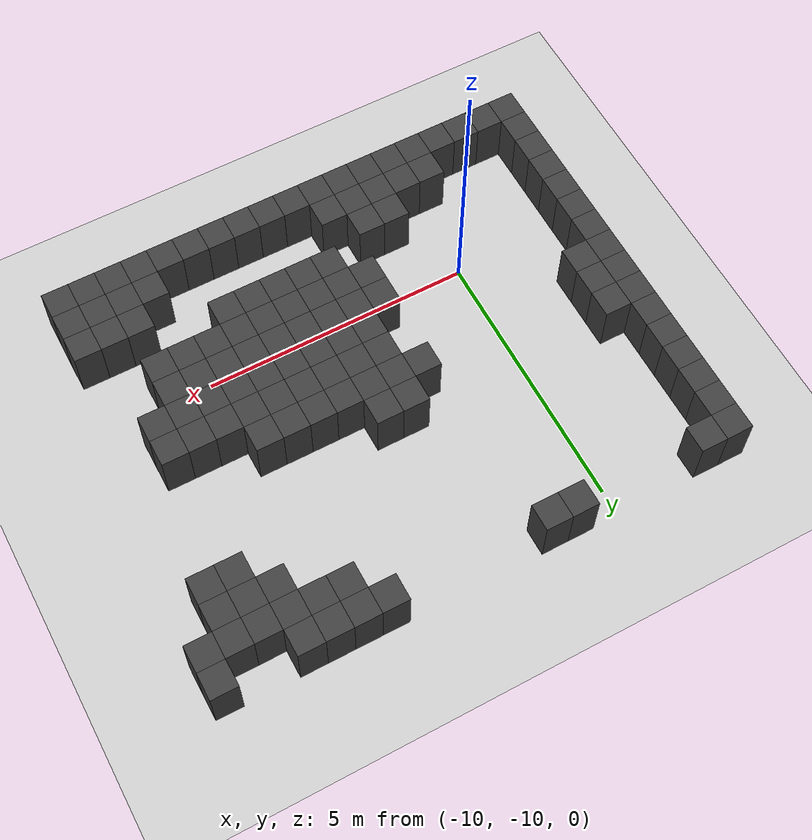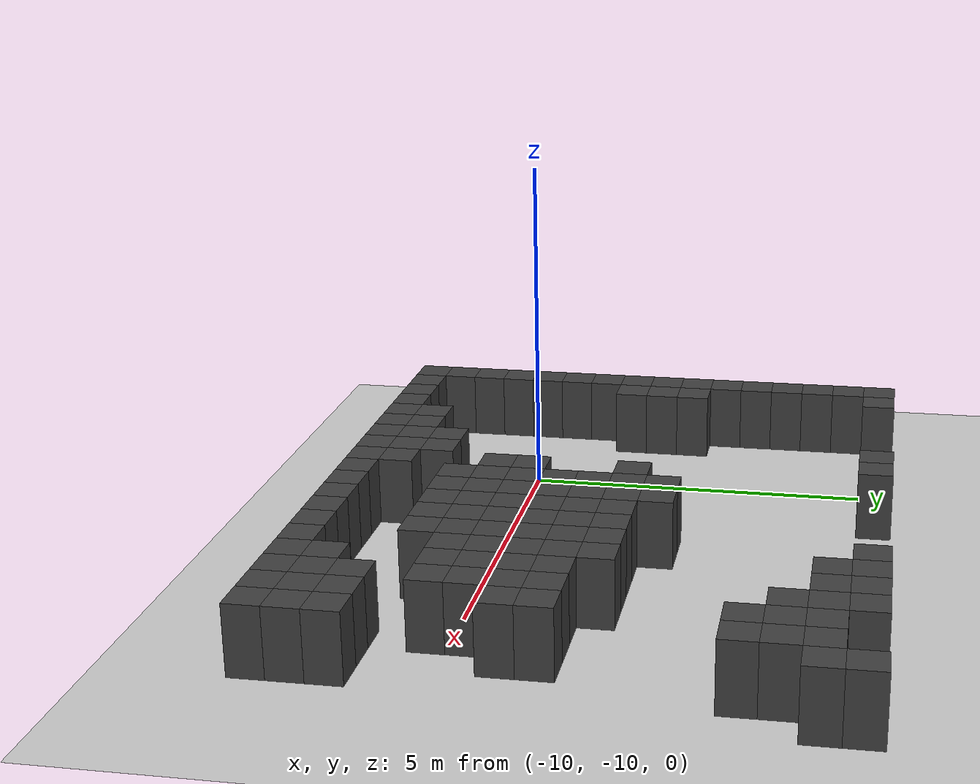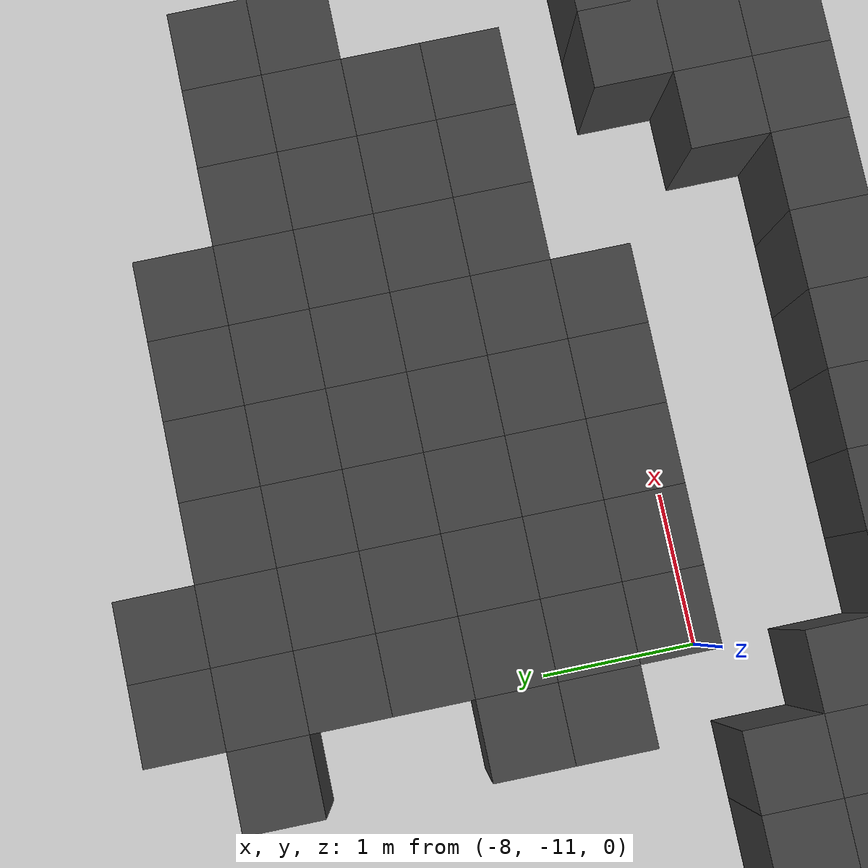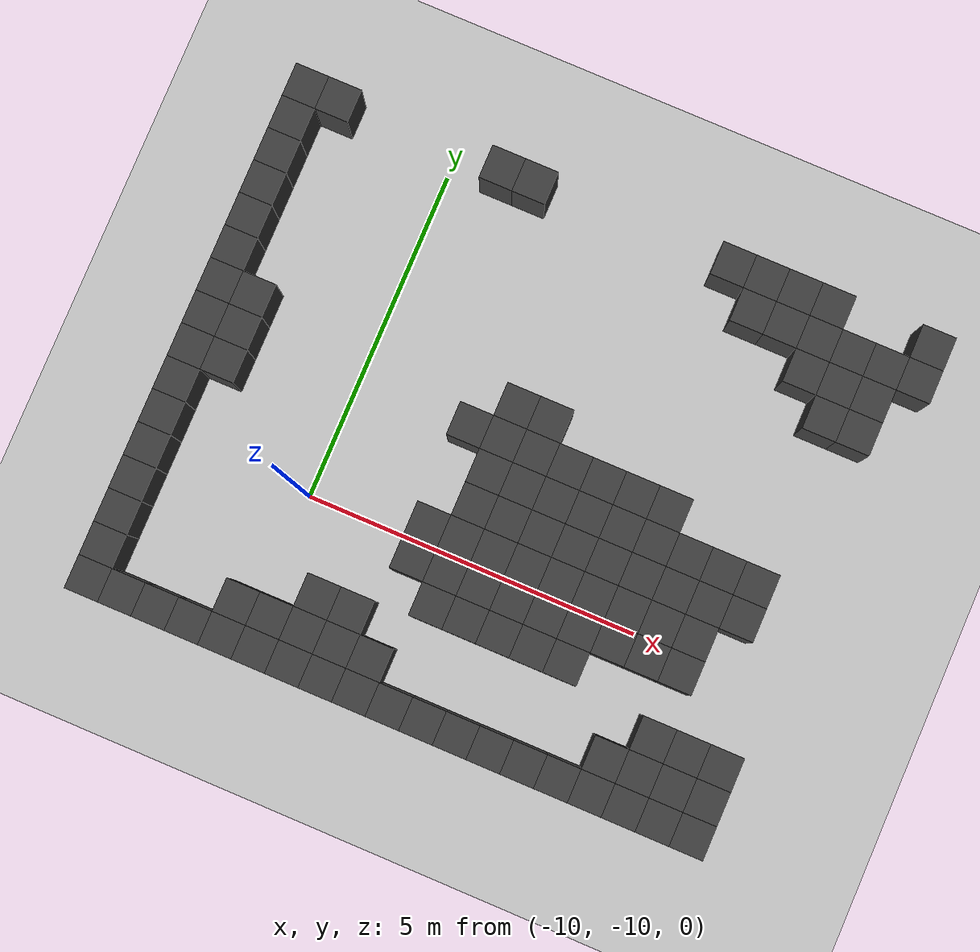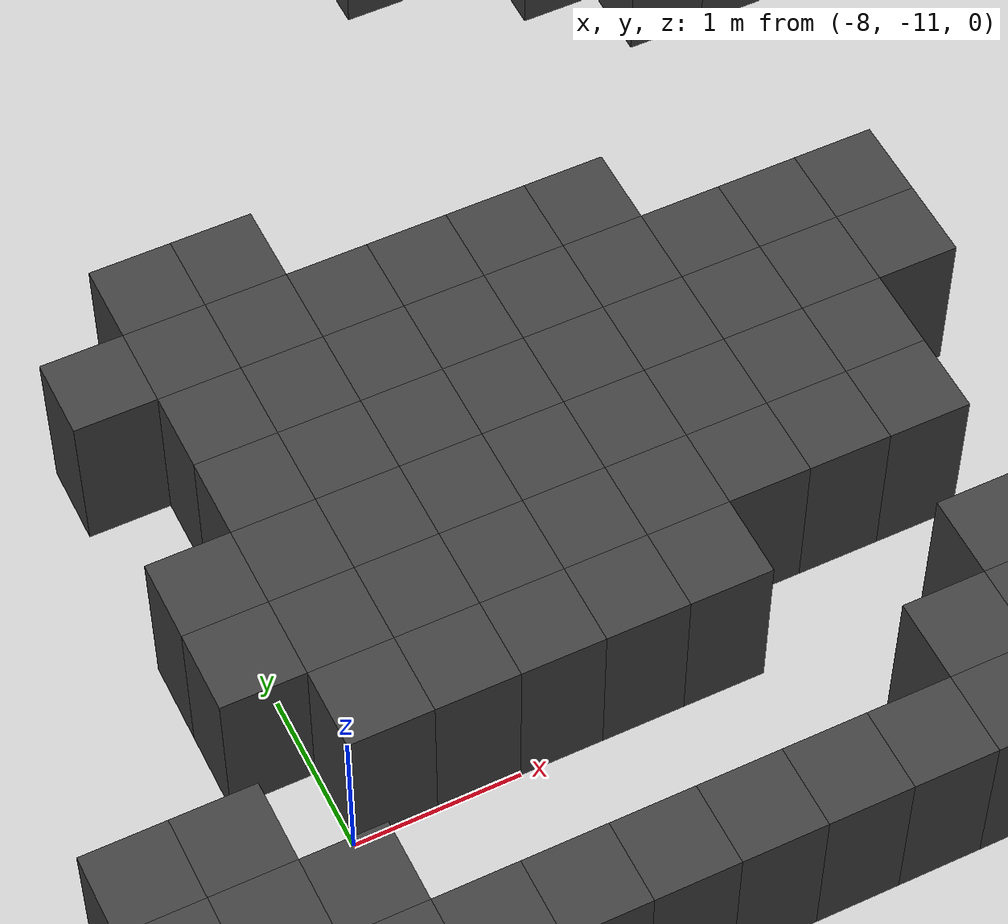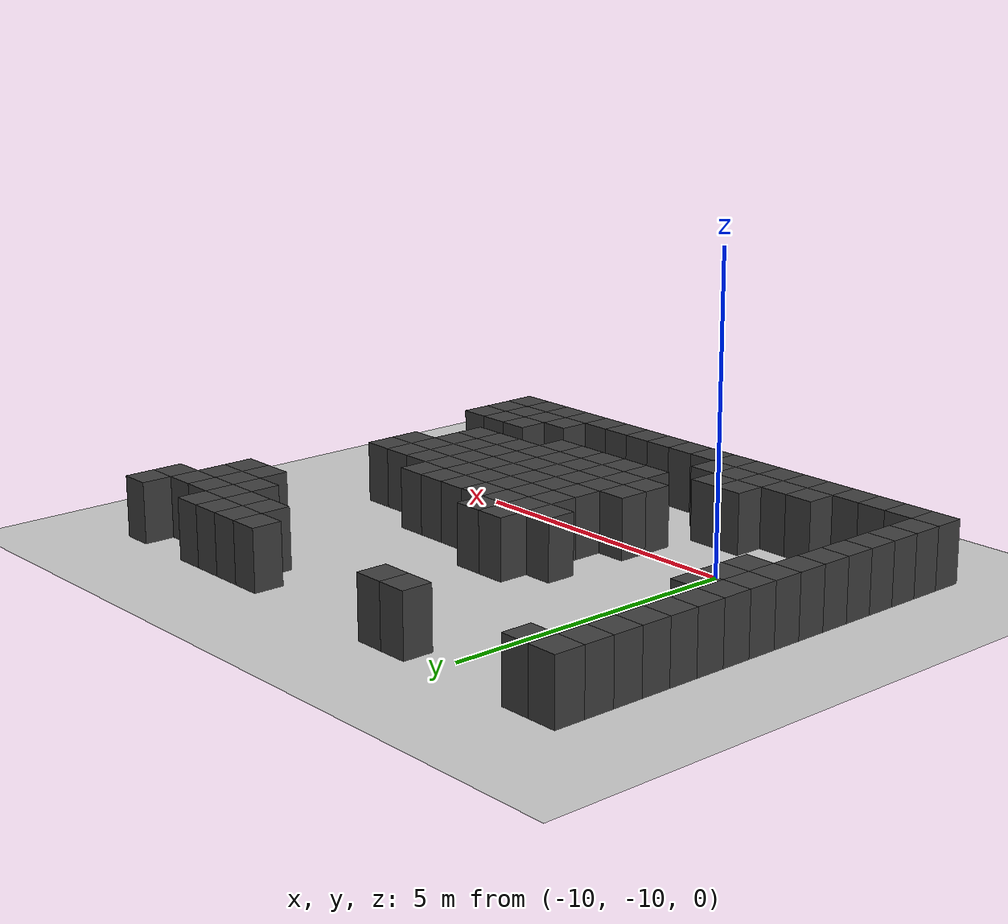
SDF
<sdf version="1.7">
 <world name="map_9381">
  <model name="ground_plane">
   <static>true</static>
   <link name="link">
    <collision name="collision">
     <geometry><plane><normal>0 0 1</normal><size>200 200</size></plane></geometry>
    </collision>
    <visual name="visual">
     <geometry><plane><normal>0 0 1</normal><size>200 200</size></plane></geometry>
     <material><ambient>0.8 0.8 0.8 1</ambient><diffuse>0.8 0.8 0.8 1</diffuse></material>
    </visual>
   </link>
  </model>
  <model name="maze_environment">
   <static>true</static>
   <link name="wall_524">
    <pose>-12.250 -4.750 0.500 0 0 0</pose>
    <collision name="col"><geometry><box><size>0.5 0.5 1.0</size></box></geometry></collision>
    <visual name="vis">
     <geometry><box><size>0.5 0.5 1.0</size></box></geometry>
     <material><ambient>0.15 0.15 0.15 1</ambient><diffuse>0.25 0.25 0.25 1</diffuse></material>
    </visual>
   </link>
   <link name="wall_525">
    <pose>-11.750 -4.750 0.500 0 0 0</pose>
    <collision name="col"><geometry><box><size>0.5 0.5 1.0</size></box></geometry></collision>
    <visual name="vis">
     <geometry><box><size>0.5 0.5 1.0</size></box></geometry>
     <material><ambient>0.15 0.15 0.15 1</ambient><diffuse>0.25 0.25 0.25 1</diffuse></material>
    </visual>
   </link>
   <link name="wall_526">
    <pose>-9.250 -4.750 0.500 0 0 0</pose>
    <collision name="col"><geometry><box><size>0.5 0.5 1.0</size></box></geometry></collision>
    <visual name="vis">
     <geometry><box><size>0.5 0.5 1.0</size></box></geometry>
     <material><ambient>0.15 0.15 0.15 1</ambient><diffuse>0.25 0.25 0.25 1</diffuse></material>
    </visual>
   </link>
   <link name="wall_527">
    <pose>-8.750 -4.750 0.500 0 0 0</pose>
    <collision name="col"><geometry><box><size>0.5 0.5 1.0</size></box></geometry></collision>
    <visual name="vis">
     <geometry><box><size>0.5 0.5 1.0</size></box></geometry>
     <material><ambient>0.15 0.15 0.15 1</ambient><diffuse>0.25 0.25 0.25 1</diffuse></material>
    </visual>
   </link>
   <link name="wall_528">
    <pose>-5.750 -4.750 0.500 0 0 0</pose>
    <collision name="col"><geometry><box><size>0.5 0.5 1.0</size></box></geometry></collision>
    <visual name="vis">
     <geometry><box><size>0.5 0.5 1.0</size></box></geometry>
     <material><ambient>0.15 0.15 0.15 1</ambient><diffuse>0.25 0.25 0.25 1</diffuse></material>
    </visual>
   </link>
   <link name="wall_529">
    <pose>-5.250 -4.750 0.500 0 0 0</pose>
    <collision name="col"><geometry><box><size>0.5 0.5 1.0</size></box></geometry></collision>
    <visual name="vis">
     <geometry><box><size>0.5 0.5 1.0</size></box></geometry>
     <material><ambient>0.15 0.15 0.15 1</ambient><diffuse>0.25 0.25 0.25 1</diffuse></material>
    </visual>
   </link>
   <link name="wall_530">
    <pose>-4.750 -4.750 0.500 0 0 0</pose>
    <collision name="col"><geometry><box><size>0.5 0.5 1.0</size></box></geometry></collision>
    <visual name="vis">
     <geometry><box><size>0.5 0.5 1.0</size></box></geometry>
     <material><ambient>0.15 0.15 0.15 1</ambient><diffuse>0.25 0.25 0.25 1</diffuse></material>
    </visual>
   </link>
   <link name="wall_531">
    <pose>-4.250 -4.750 0.500 0 0 0</pose>
    <collision name="col"><geometry><box><size>0.5 0.5 1.0</size></box></geometry></collision>
    <visual name="vis">
     <geometry><box><size>0.5 0.5 1.0</size></box></geometry>
     <material><ambient>0.15 0.15 0.15 1</ambient><diffuse>0.25 0.25 0.25 1</diffuse></material>
    </visual>
   </link>
   <link name="wall_532">
    <pose>-2.750 -4.750 0.500 0 0 0</pose>
    <collision name="col"><geometry><box><size>0.5 0.5 1.0</size></box></geometry></collision>
    <visual name="vis">
     <geometry><box><size>0.5 0.5 1.0</size></box></geometry>
     <material><ambient>0.15 0.15 0.15 1</ambient><diffuse>0.25 0.25 0.25 1</diffuse></material>
    </visual>
   </link>
   <link name="wall_546">
    <pose>-12.250 -5.250 0.500 0 0 0</pose>
    <collision name="col"><geometry><box><size>0.5 0.5 1.0</size></box></geometry></collision>
    <visual name="vis">
     <geometry><box><size>0.5 0.5 1.0</size></box></geometry>
     <material><ambient>0.15 0.15 0.15 1</ambient><diffuse>0.25 0.25 0.25 1</diffuse></material>
    </visual>
   </link>
   <link name="wall_547">
    <pose>-5.250 -5.250 0.500 0 0 0</pose>
    <collision name="col"><geometry><box><size>0.5 0.5 1.0</size></box></geometry></collision>
    <visual name="vis">
     <geometry><box><size>0.5 0.5 1.0</size></box></geometry>
     <material><ambient>0.15 0.15 0.15 1</ambient><diffuse>0.25 0.25 0.25 1</diffuse></material>
    </visual>
   </link>
   <link name="wall_548">
    <pose>-4.750 -5.250 0.500 0 0 0</pose>
    <collision name="col"><geometry><box><size>0.5 0.5 1.0</size></box></geometry></collision>
    <visual name="vis">
     <geometry><box><size>0.5 0.5 1.0</size></box></geometry>
     <material><ambient>0.15 0.15 0.15 1</ambient><diffuse>0.25 0.25 0.25 1</diffuse></material>
    </visual>
   </link>
   <link name="wall_549">
    <pose>-4.250 -5.250 0.500 0 0 0</pose>
    <collision name="col"><geometry><box><size>0.5 0.5 1.0</size></box></geometry></collision>
    <visual name="vis">
     <geometry><box><size>0.5 0.5 1.0</size></box></geometry>
     <material><ambient>0.15 0.15 0.15 1</ambient><diffuse>0.25 0.25 0.25 1</diffuse></material>
    </visual>
   </link>
   <link name="wall_550">
    <pose>-3.750 -5.250 0.500 0 0 0</pose>
    <collision name="col"><geometry><box><size>0.5 0.5 1.0</size></box></geometry></collision>
    <visual name="vis">
     <geometry><box><size>0.5 0.5 1.0</size></box></geometry>
     <material><ambient>0.15 0.15 0.15 1</ambient><diffuse>0.25 0.25 0.25 1</diffuse></material>
    </visual>
   </link>
   <link name="wall_551">
    <pose>-3.250 -5.250 0.500 0 0 0</pose>
    <collision name="col"><geometry><box><size>0.5 0.5 1.0</size></box></geometry></collision>
    <visual name="vis">
     <geometry><box><size>0.5 0.5 1.0</size></box></geometry>
     <material><ambient>0.15 0.15 0.15 1</ambient><diffuse>0.25 0.25 0.25 1</diffuse></material>
    </visual>
   </link>
   <link name="wall_552">
    <pose>-2.750 -5.250 0.500 0 0 0</pose>
    <collision name="col"><geometry><box><size>0.5 0.5 1.0</size></box></geometry></collision>
    <visual name="vis">
     <geometry><box><size>0.5 0.5 1.0</size></box></geometry>
     <material><ambient>0.15 0.15 0.15 1</ambient><diffuse>0.25 0.25 0.25 1</diffuse></material>
    </visual>
   </link>
   <link name="wall_565">
    <pose>-12.250 -5.750 0.500 0 0 0</pose>
    <collision name="col"><geometry><box><size>0.5 0.5 1.0</size></box></geometry></collision>
    <visual name="vis">
     <geometry><box><size>0.5 0.5 1.0</size></box></geometry>
     <material><ambient>0.15 0.15 0.15 1</ambient><diffuse>0.25 0.25 0.25 1</diffuse></material>
    </visual>
   </link>
   <link name="wall_566">
    <pose>-4.250 -5.750 0.500 0 0 0</pose>
    <collision name="col"><geometry><box><size>0.5 0.5 1.0</size></box></geometry></collision>
    <visual name="vis">
     <geometry><box><size>0.5 0.5 1.0</size></box></geometry>
     <material><ambient>0.15 0.15 0.15 1</ambient><diffuse>0.25 0.25 0.25 1</diffuse></material>
    </visual>
   </link>
   <link name="wall_567">
    <pose>-3.750 -5.750 0.500 0 0 0</pose>
    <collision name="col"><geometry><box><size>0.5 0.5 1.0</size></box></geometry></collision>
    <visual name="vis">
     <geometry><box><size>0.5 0.5 1.0</size></box></geometry>
     <material><ambient>0.15 0.15 0.15 1</ambient><diffuse>0.25 0.25 0.25 1</diffuse></material>
    </visual>
   </link>
   <link name="wall_568">
    <pose>-3.250 -5.750 0.500 0 0 0</pose>
    <collision name="col"><geometry><box><size>0.5 0.5 1.0</size></box></geometry></collision>
    <visual name="vis">
     <geometry><box><size>0.5 0.5 1.0</size></box></geometry>
     <material><ambient>0.15 0.15 0.15 1</ambient><diffuse>0.25 0.25 0.25 1</diffuse></material>
    </visual>
   </link>
   <link name="wall_581">
    <pose>-12.250 -6.250 0.500 0 0 0</pose>
    <collision name="col"><geometry><box><size>0.5 0.5 1.0</size></box></geometry></collision>
    <visual name="vis">
     <geometry><box><size>0.5 0.5 1.0</size></box></geometry>
     <material><ambient>0.15 0.15 0.15 1</ambient><diffuse>0.25 0.25 0.25 1</diffuse></material>
    </visual>
   </link>
   <link name="wall_582">
    <pose>-3.750 -6.250 0.500 0 0 0</pose>
    <collision name="col"><geometry><box><size>0.5 0.5 1.0</size></box></geometry></collision>
    <visual name="vis">
     <geometry><box><size>0.5 0.5 1.0</size></box></geometry>
     <material><ambient>0.15 0.15 0.15 1</ambient><diffuse>0.25 0.25 0.25 1</diffuse></material>
    </visual>
   </link>
   <link name="wall_583">
    <pose>-3.250 -6.250 0.500 0 0 0</pose>
    <collision name="col"><geometry><box><size>0.5 0.5 1.0</size></box></geometry></collision>
    <visual name="vis">
     <geometry><box><size>0.5 0.5 1.0</size></box></geometry>
     <material><ambient>0.15 0.15 0.15 1</ambient><diffuse>0.25 0.25 0.25 1</diffuse></material>
    </visual>
   </link>
   <link name="wall_593">
    <pose>-12.250 -6.750 0.500 0 0 0</pose>
    <collision name="col"><geometry><box><size>0.5 0.5 1.0</size></box></geometry></collision>
    <visual name="vis">
     <geometry><box><size>0.5 0.5 1.0</size></box></geometry>
     <material><ambient>0.15 0.15 0.15 1</ambient><diffuse>0.25 0.25 0.25 1</diffuse></material>
    </visual>
   </link>
   <link name="wall_603">
    <pose>-12.250 -7.250 0.500 0 0 0</pose>
    <collision name="col"><geometry><box><size>0.5 0.5 1.0</size></box></geometry></collision>
    <visual name="vis">
     <geometry><box><size>0.5 0.5 1.0</size></box></geometry>
     <material><ambient>0.15 0.15 0.15 1</ambient><diffuse>0.25 0.25 0.25 1</diffuse></material>
    </visual>
   </link>
   <link name="wall_615">
    <pose>-12.250 -7.750 0.500 0 0 0</pose>
    <collision name="col"><geometry><box><size>0.5 0.5 1.0</size></box></geometry></collision>
    <visual name="vis">
     <geometry><box><size>0.5 0.5 1.0</size></box></geometry>
     <material><ambient>0.15 0.15 0.15 1</ambient><diffuse>0.25 0.25 0.25 1</diffuse></material>
    </visual>
   </link>
   <link name="wall_616">
    <pose>-11.750 -7.750 0.500 0 0 0</pose>
    <collision name="col"><geometry><box><size>0.5 0.5 1.0</size></box></geometry></collision>
    <visual name="vis">
     <geometry><box><size>0.5 0.5 1.0</size></box></geometry>
     <material><ambient>0.15 0.15 0.15 1</ambient><diffuse>0.25 0.25 0.25 1</diffuse></material>
    </visual>
   </link>
   <link name="wall_617">
    <pose>-7.750 -7.750 0.500 0 0 0</pose>
    <collision name="col"><geometry><box><size>0.5 0.5 1.0</size></box></geometry></collision>
    <visual name="vis">
     <geometry><box><size>0.5 0.5 1.0</size></box></geometry>
     <material><ambient>0.15 0.15 0.15 1</ambient><diffuse>0.25 0.25 0.25 1</diffuse></material>
    </visual>
   </link>
   <link name="wall_618">
    <pose>-7.250 -7.750 0.500 0 0 0</pose>
    <collision name="col"><geometry><box><size>0.5 0.5 1.0</size></box></geometry></collision>
    <visual name="vis">
     <geometry><box><size>0.5 0.5 1.0</size></box></geometry>
     <material><ambient>0.15 0.15 0.15 1</ambient><diffuse>0.25 0.25 0.25 1</diffuse></material>
    </visual>
   </link>
   <link name="wall_630">
    <pose>-12.250 -8.250 0.500 0 0 0</pose>
    <collision name="col"><geometry><box><size>0.5 0.5 1.0</size></box></geometry></collision>
    <visual name="vis">
     <geometry><box><size>0.5 0.5 1.0</size></box></geometry>
     <material><ambient>0.15 0.15 0.15 1</ambient><diffuse>0.25 0.25 0.25 1</diffuse></material>
    </visual>
   </link>
   <link name="wall_631">
    <pose>-11.750 -8.250 0.500 0 0 0</pose>
    <collision name="col"><geometry><box><size>0.5 0.5 1.0</size></box></geometry></collision>
    <visual name="vis">
     <geometry><box><size>0.5 0.5 1.0</size></box></geometry>
     <material><ambient>0.15 0.15 0.15 1</ambient><diffuse>0.25 0.25 0.25 1</diffuse></material>
    </visual>
   </link>
   <link name="wall_632">
    <pose>-8.250 -8.250 0.500 0 0 0</pose>
    <collision name="col"><geometry><box><size>0.5 0.5 1.0</size></box></geometry></collision>
    <visual name="vis">
     <geometry><box><size>0.5 0.5 1.0</size></box></geometry>
     <material><ambient>0.15 0.15 0.15 1</ambient><diffuse>0.25 0.25 0.25 1</diffuse></material>
    </visual>
   </link>
   <link name="wall_633">
    <pose>-7.750 -8.250 0.500 0 0 0</pose>
    <collision name="col"><geometry><box><size>0.5 0.5 1.0</size></box></geometry></collision>
    <visual name="vis">
     <geometry><box><size>0.5 0.5 1.0</size></box></geometry>
     <material><ambient>0.15 0.15 0.15 1</ambient><diffuse>0.25 0.25 0.25 1</diffuse></material>
    </visual>
   </link>
   <link name="wall_634">
    <pose>-7.250 -8.250 0.500 0 0 0</pose>
    <collision name="col"><geometry><box><size>0.5 0.5 1.0</size></box></geometry></collision>
    <visual name="vis">
     <geometry><box><size>0.5 0.5 1.0</size></box></geometry>
     <material><ambient>0.15 0.15 0.15 1</ambient><diffuse>0.25 0.25 0.25 1</diffuse></material>
    </visual>
   </link>
   <link name="wall_635">
    <pose>-6.750 -8.250 0.500 0 0 0</pose>
    <collision name="col"><geometry><box><size>0.5 0.5 1.0</size></box></geometry></collision>
    <visual name="vis">
     <geometry><box><size>0.5 0.5 1.0</size></box></geometry>
     <material><ambient>0.15 0.15 0.15 1</ambient><diffuse>0.25 0.25 0.25 1</diffuse></material>
    </visual>
   </link>
   <link name="wall_636">
    <pose>-6.250 -8.250 0.500 0 0 0</pose>
    <collision name="col"><geometry><box><size>0.5 0.5 1.0</size></box></geometry></collision>
    <visual name="vis">
     <geometry><box><size>0.5 0.5 1.0</size></box></geometry>
     <material><ambient>0.15 0.15 0.15 1</ambient><diffuse>0.25 0.25 0.25 1</diffuse></material>
    </visual>
   </link>
   <link name="wall_637">
    <pose>-5.750 -8.250 0.500 0 0 0</pose>
    <collision name="col"><geometry><box><size>0.5 0.5 1.0</size></box></geometry></collision>
    <visual name="vis">
     <geometry><box><size>0.5 0.5 1.0</size></box></geometry>
     <material><ambient>0.15 0.15 0.15 1</ambient><diffuse>0.25 0.25 0.25 1</diffuse></material>
    </visual>
   </link>
   <link name="wall_638">
    <pose>-5.250 -8.250 0.500 0 0 0</pose>
    <collision name="col"><geometry><box><size>0.5 0.5 1.0</size></box></geometry></collision>
    <visual name="vis">
     <geometry><box><size>0.5 0.5 1.0</size></box></geometry>
     <material><ambient>0.15 0.15 0.15 1</ambient><diffuse>0.25 0.25 0.25 1</diffuse></material>
    </visual>
   </link>
   <link name="wall_651">
    <pose>-12.250 -8.750 0.500 0 0 0</pose>
    <collision name="col"><geometry><box><size>0.5 0.5 1.0</size></box></geometry></collision>
    <visual name="vis">
     <geometry><box><size>0.5 0.5 1.0</size></box></geometry>
     <material><ambient>0.15 0.15 0.15 1</ambient><diffuse>0.25 0.25 0.25 1</diffuse></material>
    </visual>
   </link>
   <link name="wall_652">
    <pose>-11.750 -8.750 0.500 0 0 0</pose>
    <collision name="col"><geometry><box><size>0.5 0.5 1.0</size></box></geometry></collision>
    <visual name="vis">
     <geometry><box><size>0.5 0.5 1.0</size></box></geometry>
     <material><ambient>0.15 0.15 0.15 1</ambient><diffuse>0.25 0.25 0.25 1</diffuse></material>
    </visual>
   </link>
   <link name="wall_653">
    <pose>-7.750 -8.750 0.500 0 0 0</pose>
    <collision name="col"><geometry><box><size>0.5 0.5 1.0</size></box></geometry></collision>
    <visual name="vis">
     <geometry><box><size>0.5 0.5 1.0</size></box></geometry>
     <material><ambient>0.15 0.15 0.15 1</ambient><diffuse>0.25 0.25 0.25 1</diffuse></material>
    </visual>
   </link>
   <link name="wall_654">
    <pose>-7.250 -8.750 0.500 0 0 0</pose>
    <collision name="col"><geometry><box><size>0.5 0.5 1.0</size></box></geometry></collision>
    <visual name="vis">
     <geometry><box><size>0.5 0.5 1.0</size></box></geometry>
     <material><ambient>0.15 0.15 0.15 1</ambient><diffuse>0.25 0.25 0.25 1</diffuse></material>
    </visual>
   </link>
   <link name="wall_655">
    <pose>-6.750 -8.750 0.500 0 0 0</pose>
    <collision name="col"><geometry><box><size>0.5 0.5 1.0</size></box></geometry></collision>
    <visual name="vis">
     <geometry><box><size>0.5 0.5 1.0</size></box></geometry>
     <material><ambient>0.15 0.15 0.15 1</ambient><diffuse>0.25 0.25 0.25 1</diffuse></material>
    </visual>
   </link>
   <link name="wall_656">
    <pose>-6.250 -8.750 0.500 0 0 0</pose>
    <collision name="col"><geometry><box><size>0.5 0.5 1.0</size></box></geometry></collision>
    <visual name="vis">
     <geometry><box><size>0.5 0.5 1.0</size></box></geometry>
     <material><ambient>0.15 0.15 0.15 1</ambient><diffuse>0.25 0.25 0.25 1</diffuse></material>
    </visual>
   </link>
   <link name="wall_657">
    <pose>-5.750 -8.750 0.500 0 0 0</pose>
    <collision name="col"><geometry><box><size>0.5 0.5 1.0</size></box></geometry></collision>
    <visual name="vis">
     <geometry><box><size>0.5 0.5 1.0</size></box></geometry>
     <material><ambient>0.15 0.15 0.15 1</ambient><diffuse>0.25 0.25 0.25 1</diffuse></material>
    </visual>
   </link>
   <link name="wall_658">
    <pose>-5.250 -8.750 0.500 0 0 0</pose>
    <collision name="col"><geometry><box><size>0.5 0.5 1.0</size></box></geometry></collision>
    <visual name="vis">
     <geometry><box><size>0.5 0.5 1.0</size></box></geometry>
     <material><ambient>0.15 0.15 0.15 1</ambient><diffuse>0.25 0.25 0.25 1</diffuse></material>
    </visual>
   </link>
   <link name="wall_659">
    <pose>-4.750 -8.750 0.500 0 0 0</pose>
    <collision name="col"><geometry><box><size>0.5 0.5 1.0</size></box></geometry></collision>
    <visual name="vis">
     <geometry><box><size>0.5 0.5 1.0</size></box></geometry>
     <material><ambient>0.15 0.15 0.15 1</ambient><diffuse>0.25 0.25 0.25 1</diffuse></material>
    </visual>
   </link>
   <link name="wall_660">
    <pose>-4.250 -8.750 0.500 0 0 0</pose>
    <collision name="col"><geometry><box><size>0.5 0.5 1.0</size></box></geometry></collision>
    <visual name="vis">
     <geometry><box><size>0.5 0.5 1.0</size></box></geometry>
     <material><ambient>0.15 0.15 0.15 1</ambient><diffuse>0.25 0.25 0.25 1</diffuse></material>
    </visual>
   </link>
   <link name="wall_661">
    <pose>-3.750 -8.750 0.500 0 0 0</pose>
    <collision name="col"><geometry><box><size>0.5 0.5 1.0</size></box></geometry></collision>
    <visual name="vis">
     <geometry><box><size>0.5 0.5 1.0</size></box></geometry>
     <material><ambient>0.15 0.15 0.15 1</ambient><diffuse>0.25 0.25 0.25 1</diffuse></material>
    </visual>
   </link>
   <link name="wall_675">
    <pose>-12.250 -9.250 0.500 0 0 0</pose>
    <collision name="col"><geometry><box><size>0.5 0.5 1.0</size></box></geometry></collision>
    <visual name="vis">
     <geometry><box><size>0.5 0.5 1.0</size></box></geometry>
     <material><ambient>0.15 0.15 0.15 1</ambient><diffuse>0.25 0.25 0.25 1</diffuse></material>
    </visual>
   </link>
   <link name="wall_676">
    <pose>-7.750 -9.250 0.500 0 0 0</pose>
    <collision name="col"><geometry><box><size>0.5 0.5 1.0</size></box></geometry></collision>
    <visual name="vis">
     <geometry><box><size>0.5 0.5 1.0</size></box></geometry>
     <material><ambient>0.15 0.15 0.15 1</ambient><diffuse>0.25 0.25 0.25 1</diffuse></material>
    </visual>
   </link>
   <link name="wall_677">
    <pose>-7.250 -9.250 0.500 0 0 0</pose>
    <collision name="col"><geometry><box><size>0.5 0.5 1.0</size></box></geometry></collision>
    <visual name="vis">
     <geometry><box><size>0.5 0.5 1.0</size></box></geometry>
     <material><ambient>0.15 0.15 0.15 1</ambient><diffuse>0.25 0.25 0.25 1</diffuse></material>
    </visual>
   </link>
   <link name="wall_678">
    <pose>-6.750 -9.250 0.500 0 0 0</pose>
    <collision name="col"><geometry><box><size>0.5 0.5 1.0</size></box></geometry></collision>
    <visual name="vis">
     <geometry><box><size>0.5 0.5 1.0</size></box></geometry>
     <material><ambient>0.15 0.15 0.15 1</ambient><diffuse>0.25 0.25 0.25 1</diffuse></material>
    </visual>
   </link>
   <link name="wall_679">
    <pose>-6.250 -9.250 0.500 0 0 0</pose>
    <collision name="col"><geometry><box><size>0.5 0.5 1.0</size></box></geometry></collision>
    <visual name="vis">
     <geometry><box><size>0.5 0.5 1.0</size></box></geometry>
     <material><ambient>0.15 0.15 0.15 1</ambient><diffuse>0.25 0.25 0.25 1</diffuse></material>
    </visual>
   </link>
   <link name="wall_680">
    <pose>-5.750 -9.250 0.500 0 0 0</pose>
    <collision name="col"><geometry><box><size>0.5 0.5 1.0</size></box></geometry></collision>
    <visual name="vis">
     <geometry><box><size>0.5 0.5 1.0</size></box></geometry>
     <material><ambient>0.15 0.15 0.15 1</ambient><diffuse>0.25 0.25 0.25 1</diffuse></material>
    </visual>
   </link>
   <link name="wall_681">
    <pose>-5.250 -9.250 0.500 0 0 0</pose>
    <collision name="col"><geometry><box><size>0.5 0.5 1.0</size></box></geometry></collision>
    <visual name="vis">
     <geometry><box><size>0.5 0.5 1.0</size></box></geometry>
     <material><ambient>0.15 0.15 0.15 1</ambient><diffuse>0.25 0.25 0.25 1</diffuse></material>
    </visual>
   </link>
   <link name="wall_682">
    <pose>-4.750 -9.250 0.500 0 0 0</pose>
    <collision name="col"><geometry><box><size>0.5 0.5 1.0</size></box></geometry></collision>
    <visual name="vis">
     <geometry><box><size>0.5 0.5 1.0</size></box></geometry>
     <material><ambient>0.15 0.15 0.15 1</ambient><diffuse>0.25 0.25 0.25 1</diffuse></material>
    </visual>
   </link>
   <link name="wall_683">
    <pose>-4.250 -9.250 0.500 0 0 0</pose>
    <collision name="col"><geometry><box><size>0.5 0.5 1.0</size></box></geometry></collision>
    <visual name="vis">
     <geometry><box><size>0.5 0.5 1.0</size></box></geometry>
     <material><ambient>0.15 0.15 0.15 1</ambient><diffuse>0.25 0.25 0.25 1</diffuse></material>
    </visual>
   </link>
   <link name="wall_684">
    <pose>-3.750 -9.250 0.500 0 0 0</pose>
    <collision name="col"><geometry><box><size>0.5 0.5 1.0</size></box></geometry></collision>
    <visual name="vis">
     <geometry><box><size>0.5 0.5 1.0</size></box></geometry>
     <material><ambient>0.15 0.15 0.15 1</ambient><diffuse>0.25 0.25 0.25 1</diffuse></material>
    </visual>
   </link>
   <link name="wall_698">
    <pose>-12.250 -9.750 0.500 0 0 0</pose>
    <collision name="col"><geometry><box><size>0.5 0.5 1.0</size></box></geometry></collision>
    <visual name="vis">
     <geometry><box><size>0.5 0.5 1.0</size></box></geometry>
     <material><ambient>0.15 0.15 0.15 1</ambient><diffuse>0.25 0.25 0.25 1</diffuse></material>
    </visual>
   </link>
   <link name="wall_699">
    <pose>-8.250 -9.750 0.500 0 0 0</pose>
    <collision name="col"><geometry><box><size>0.5 0.5 1.0</size></box></geometry></collision>
    <visual name="vis">
     <geometry><box><size>0.5 0.5 1.0</size></box></geometry>
     <material><ambient>0.15 0.15 0.15 1</ambient><diffuse>0.25 0.25 0.25 1</diffuse></material>
    </visual>
   </link>
   <link name="wall_700">
    <pose>-7.750 -9.750 0.500 0 0 0</pose>
    <collision name="col"><geometry><box><size>0.5 0.5 1.0</size></box></geometry></collision>
    <visual name="vis">
     <geometry><box><size>0.5 0.5 1.0</size></box></geometry>
     <material><ambient>0.15 0.15 0.15 1</ambient><diffuse>0.25 0.25 0.25 1</diffuse></material>
    </visual>
   </link>
   <link name="wall_701">
    <pose>-7.250 -9.750 0.500 0 0 0</pose>
    <collision name="col"><geometry><box><size>0.5 0.5 1.0</size></box></geometry></collision>
    <visual name="vis">
     <geometry><box><size>0.5 0.5 1.0</size></box></geometry>
     <material><ambient>0.15 0.15 0.15 1</ambient><diffuse>0.25 0.25 0.25 1</diffuse></material>
    </visual>
   </link>
   <link name="wall_702">
    <pose>-6.750 -9.750 0.500 0 0 0</pose>
    <collision name="col"><geometry><box><size>0.5 0.5 1.0</size></box></geometry></collision>
    <visual name="vis">
     <geometry><box><size>0.5 0.5 1.0</size></box></geometry>
     <material><ambient>0.15 0.15 0.15 1</ambient><diffuse>0.25 0.25 0.25 1</diffuse></material>
    </visual>
   </link>
   <link name="wall_703">
    <pose>-6.250 -9.750 0.500 0 0 0</pose>
    <collision name="col"><geometry><box><size>0.5 0.5 1.0</size></box></geometry></collision>
    <visual name="vis">
     <geometry><box><size>0.5 0.5 1.0</size></box></geometry>
     <material><ambient>0.15 0.15 0.15 1</ambient><diffuse>0.25 0.25 0.25 1</diffuse></material>
    </visual>
   </link>
   <link name="wall_704">
    <pose>-5.750 -9.750 0.500 0 0 0</pose>
    <collision name="col"><geometry><box><size>0.5 0.5 1.0</size></box></geometry></collision>
    <visual name="vis">
     <geometry><box><size>0.5 0.5 1.0</size></box></geometry>
     <material><ambient>0.15 0.15 0.15 1</ambient><diffuse>0.25 0.25 0.25 1</diffuse></material>
    </visual>
   </link>
   <link name="wall_705">
    <pose>-5.250 -9.750 0.500 0 0 0</pose>
    <collision name="col"><geometry><box><size>0.5 0.5 1.0</size></box></geometry></collision>
    <visual name="vis">
     <geometry><box><size>0.5 0.5 1.0</size></box></geometry>
     <material><ambient>0.15 0.15 0.15 1</ambient><diffuse>0.25 0.25 0.25 1</diffuse></material>
    </visual>
   </link>
   <link name="wall_706">
    <pose>-4.750 -9.750 0.500 0 0 0</pose>
    <collision name="col"><geometry><box><size>0.5 0.5 1.0</size></box></geometry></collision>
    <visual name="vis">
     <geometry><box><size>0.5 0.5 1.0</size></box></geometry>
     <material><ambient>0.15 0.15 0.15 1</ambient><diffuse>0.25 0.25 0.25 1</diffuse></material>
    </visual>
   </link>
   <link name="wall_707">
    <pose>-4.250 -9.750 0.500 0 0 0</pose>
    <collision name="col"><geometry><box><size>0.5 0.5 1.0</size></box></geometry></collision>
    <visual name="vis">
     <geometry><box><size>0.5 0.5 1.0</size></box></geometry>
     <material><ambient>0.15 0.15 0.15 1</ambient><diffuse>0.25 0.25 0.25 1</diffuse></material>
    </visual>
   </link>
   <link name="wall_719">
    <pose>-12.250 -10.250 0.500 0 0 0</pose>
    <collision name="col"><geometry><box><size>0.5 0.5 1.0</size></box></geometry></collision>
    <visual name="vis">
     <geometry><box><size>0.5 0.5 1.0</size></box></geometry>
     <material><ambient>0.15 0.15 0.15 1</ambient><diffuse>0.25 0.25 0.25 1</diffuse></material>
    </visual>
   </link>
   <link name="wall_720">
    <pose>-8.250 -10.250 0.500 0 0 0</pose>
    <collision name="col"><geometry><box><size>0.5 0.5 1.0</size></box></geometry></collision>
    <visual name="vis">
     <geometry><box><size>0.5 0.5 1.0</size></box></geometry>
     <material><ambient>0.15 0.15 0.15 1</ambient><diffuse>0.25 0.25 0.25 1</diffuse></material>
    </visual>
   </link>
   <link name="wall_721">
    <pose>-7.750 -10.250 0.500 0 0 0</pose>
    <collision name="col"><geometry><box><size>0.5 0.5 1.0</size></box></geometry></collision>
    <visual name="vis">
     <geometry><box><size>0.5 0.5 1.0</size></box></geometry>
     <material><ambient>0.15 0.15 0.15 1</ambient><diffuse>0.25 0.25 0.25 1</diffuse></material>
    </visual>
   </link>
   <link name="wall_722">
    <pose>-7.250 -10.250 0.500 0 0 0</pose>
    <collision name="col"><geometry><box><size>0.5 0.5 1.0</size></box></geometry></collision>
    <visual name="vis">
     <geometry><box><size>0.5 0.5 1.0</size></box></geometry>
     <material><ambient>0.15 0.15 0.15 1</ambient><diffuse>0.25 0.25 0.25 1</diffuse></material>
    </visual>
   </link>
   <link name="wall_723">
    <pose>-6.750 -10.250 0.500 0 0 0</pose>
    <collision name="col"><geometry><box><size>0.5 0.5 1.0</size></box></geometry></collision>
    <visual name="vis">
     <geometry><box><size>0.5 0.5 1.0</size></box></geometry>
     <material><ambient>0.15 0.15 0.15 1</ambient><diffuse>0.25 0.25 0.25 1</diffuse></material>
    </visual>
   </link>
   <link name="wall_724">
    <pose>-6.250 -10.250 0.500 0 0 0</pose>
    <collision name="col"><geometry><box><size>0.5 0.5 1.0</size></box></geometry></collision>
    <visual name="vis">
     <geometry><box><size>0.5 0.5 1.0</size></box></geometry>
     <material><ambient>0.15 0.15 0.15 1</ambient><diffuse>0.25 0.25 0.25 1</diffuse></material>
    </visual>
   </link>
   <link name="wall_725">
    <pose>-5.750 -10.250 0.500 0 0 0</pose>
    <collision name="col"><geometry><box><size>0.5 0.5 1.0</size></box></geometry></collision>
    <visual name="vis">
     <geometry><box><size>0.5 0.5 1.0</size></box></geometry>
     <material><ambient>0.15 0.15 0.15 1</ambient><diffuse>0.25 0.25 0.25 1</diffuse></material>
    </visual>
   </link>
   <link name="wall_726">
    <pose>-5.250 -10.250 0.500 0 0 0</pose>
    <collision name="col"><geometry><box><size>0.5 0.5 1.0</size></box></geometry></collision>
    <visual name="vis">
     <geometry><box><size>0.5 0.5 1.0</size></box></geometry>
     <material><ambient>0.15 0.15 0.15 1</ambient><diffuse>0.25 0.25 0.25 1</diffuse></material>
    </visual>
   </link>
   <link name="wall_727">
    <pose>-4.750 -10.250 0.500 0 0 0</pose>
    <collision name="col"><geometry><box><size>0.5 0.5 1.0</size></box></geometry></collision>
    <visual name="vis">
     <geometry><box><size>0.5 0.5 1.0</size></box></geometry>
     <material><ambient>0.15 0.15 0.15 1</ambient><diffuse>0.25 0.25 0.25 1</diffuse></material>
    </visual>
   </link>
   <link name="wall_728">
    <pose>-4.250 -10.250 0.500 0 0 0</pose>
    <collision name="col"><geometry><box><size>0.5 0.5 1.0</size></box></geometry></collision>
    <visual name="vis">
     <geometry><box><size>0.5 0.5 1.0</size></box></geometry>
     <material><ambient>0.15 0.15 0.15 1</ambient><diffuse>0.25 0.25 0.25 1</diffuse></material>
    </visual>
   </link>
   <link name="wall_739">
    <pose>-12.250 -10.750 0.500 0 0 0</pose>
    <collision name="col"><geometry><box><size>0.5 0.5 1.0</size></box></geometry></collision>
    <visual name="vis">
     <geometry><box><size>0.5 0.5 1.0</size></box></geometry>
     <material><ambient>0.15 0.15 0.15 1</ambient><diffuse>0.25 0.25 0.25 1</diffuse></material>
    </visual>
   </link>
   <link name="wall_740">
    <pose>-7.750 -10.750 0.500 0 0 0</pose>
    <collision name="col"><geometry><box><size>0.5 0.5 1.0</size></box></geometry></collision>
    <visual name="vis">
     <geometry><box><size>0.5 0.5 1.0</size></box></geometry>
     <material><ambient>0.15 0.15 0.15 1</ambient><diffuse>0.25 0.25 0.25 1</diffuse></material>
    </visual>
   </link>
   <link name="wall_741">
    <pose>-7.250 -10.750 0.500 0 0 0</pose>
    <collision name="col"><geometry><box><size>0.5 0.5 1.0</size></box></geometry></collision>
    <visual name="vis">
     <geometry><box><size>0.5 0.5 1.0</size></box></geometry>
     <material><ambient>0.15 0.15 0.15 1</ambient><diffuse>0.25 0.25 0.25 1</diffuse></material>
    </visual>
   </link>
   <link name="wall_742">
    <pose>-6.750 -10.750 0.500 0 0 0</pose>
    <collision name="col"><geometry><box><size>0.5 0.5 1.0</size></box></geometry></collision>
    <visual name="vis">
     <geometry><box><size>0.5 0.5 1.0</size></box></geometry>
     <material><ambient>0.15 0.15 0.15 1</ambient><diffuse>0.25 0.25 0.25 1</diffuse></material>
    </visual>
   </link>
   <link name="wall_743">
    <pose>-6.250 -10.750 0.500 0 0 0</pose>
    <collision name="col"><geometry><box><size>0.5 0.5 1.0</size></box></geometry></collision>
    <visual name="vis">
     <geometry><box><size>0.5 0.5 1.0</size></box></geometry>
     <material><ambient>0.15 0.15 0.15 1</ambient><diffuse>0.25 0.25 0.25 1</diffuse></material>
    </visual>
   </link>
   <link name="wall_744">
    <pose>-5.750 -10.750 0.500 0 0 0</pose>
    <collision name="col"><geometry><box><size>0.5 0.5 1.0</size></box></geometry></collision>
    <visual name="vis">
     <geometry><box><size>0.5 0.5 1.0</size></box></geometry>
     <material><ambient>0.15 0.15 0.15 1</ambient><diffuse>0.25 0.25 0.25 1</diffuse></material>
    </visual>
   </link>
   <link name="wall_753">
    <pose>-12.250 -11.250 0.500 0 0 0</pose>
    <collision name="col"><geometry><box><size>0.5 0.5 1.0</size></box></geometry></collision>
    <visual name="vis">
     <geometry><box><size>0.5 0.5 1.0</size></box></geometry>
     <material><ambient>0.15 0.15 0.15 1</ambient><diffuse>0.25 0.25 0.25 1</diffuse></material>
    </visual>
   </link>
   <link name="wall_754">
    <pose>-9.250 -11.250 0.500 0 0 0</pose>
    <collision name="col"><geometry><box><size>0.5 0.5 1.0</size></box></geometry></collision>
    <visual name="vis">
     <geometry><box><size>0.5 0.5 1.0</size></box></geometry>
     <material><ambient>0.15 0.15 0.15 1</ambient><diffuse>0.25 0.25 0.25 1</diffuse></material>
    </visual>
   </link>
   <link name="wall_755">
    <pose>-8.750 -11.250 0.500 0 0 0</pose>
    <collision name="col"><geometry><box><size>0.5 0.5 1.0</size></box></geometry></collision>
    <visual name="vis">
     <geometry><box><size>0.5 0.5 1.0</size></box></geometry>
     <material><ambient>0.15 0.15 0.15 1</ambient><diffuse>0.25 0.25 0.25 1</diffuse></material>
    </visual>
   </link>
   <link name="wall_756">
    <pose>-4.250 -11.250 0.500 0 0 0</pose>
    <collision name="col"><geometry><box><size>0.5 0.5 1.0</size></box></geometry></collision>
    <visual name="vis">
     <geometry><box><size>0.5 0.5 1.0</size></box></geometry>
     <material><ambient>0.15 0.15 0.15 1</ambient><diffuse>0.25 0.25 0.25 1</diffuse></material>
    </visual>
   </link>
   <link name="wall_757">
    <pose>-3.750 -11.250 0.500 0 0 0</pose>
    <collision name="col"><geometry><box><size>0.5 0.5 1.0</size></box></geometry></collision>
    <visual name="vis">
     <geometry><box><size>0.5 0.5 1.0</size></box></geometry>
     <material><ambient>0.15 0.15 0.15 1</ambient><diffuse>0.25 0.25 0.25 1</diffuse></material>
    </visual>
   </link>
   <link name="wall_758">
    <pose>-3.250 -11.250 0.500 0 0 0</pose>
    <collision name="col"><geometry><box><size>0.5 0.5 1.0</size></box></geometry></collision>
    <visual name="vis">
     <geometry><box><size>0.5 0.5 1.0</size></box></geometry>
     <material><ambient>0.15 0.15 0.15 1</ambient><diffuse>0.25 0.25 0.25 1</diffuse></material>
    </visual>
   </link>
   <link name="wall_767">
    <pose>-12.250 -11.750 0.500 0 0 0</pose>
    <collision name="col"><geometry><box><size>0.5 0.5 1.0</size></box></geometry></collision>
    <visual name="vis">
     <geometry><box><size>0.5 0.5 1.0</size></box></geometry>
     <material><ambient>0.15 0.15 0.15 1</ambient><diffuse>0.25 0.25 0.25 1</diffuse></material>
    </visual>
   </link>
   <link name="wall_768">
    <pose>-10.250 -11.750 0.500 0 0 0</pose>
    <collision name="col"><geometry><box><size>0.5 0.5 1.0</size></box></geometry></collision>
    <visual name="vis">
     <geometry><box><size>0.5 0.5 1.0</size></box></geometry>
     <material><ambient>0.15 0.15 0.15 1</ambient><diffuse>0.25 0.25 0.25 1</diffuse></material>
    </visual>
   </link>
   <link name="wall_769">
    <pose>-9.750 -11.750 0.500 0 0 0</pose>
    <collision name="col"><geometry><box><size>0.5 0.5 1.0</size></box></geometry></collision>
    <visual name="vis">
     <geometry><box><size>0.5 0.5 1.0</size></box></geometry>
     <material><ambient>0.15 0.15 0.15 1</ambient><diffuse>0.25 0.25 0.25 1</diffuse></material>
    </visual>
   </link>
   <link name="wall_770">
    <pose>-9.250 -11.750 0.500 0 0 0</pose>
    <collision name="col"><geometry><box><size>0.5 0.5 1.0</size></box></geometry></collision>
    <visual name="vis">
     <geometry><box><size>0.5 0.5 1.0</size></box></geometry>
     <material><ambient>0.15 0.15 0.15 1</ambient><diffuse>0.25 0.25 0.25 1</diffuse></material>
    </visual>
   </link>
   <link name="wall_771">
    <pose>-8.750 -11.750 0.500 0 0 0</pose>
    <collision name="col"><geometry><box><size>0.5 0.5 1.0</size></box></geometry></collision>
    <visual name="vis">
     <geometry><box><size>0.5 0.5 1.0</size></box></geometry>
     <material><ambient>0.15 0.15 0.15 1</ambient><diffuse>0.25 0.25 0.25 1</diffuse></material>
    </visual>
   </link>
   <link name="wall_772">
    <pose>-8.250 -11.750 0.500 0 0 0</pose>
    <collision name="col"><geometry><box><size>0.5 0.5 1.0</size></box></geometry></collision>
    <visual name="vis">
     <geometry><box><size>0.5 0.5 1.0</size></box></geometry>
     <material><ambient>0.15 0.15 0.15 1</ambient><diffuse>0.25 0.25 0.25 1</diffuse></material>
    </visual>
   </link>
   <link name="wall_773">
    <pose>-4.750 -11.750 0.500 0 0 0</pose>
    <collision name="col"><geometry><box><size>0.5 0.5 1.0</size></box></geometry></collision>
    <visual name="vis">
     <geometry><box><size>0.5 0.5 1.0</size></box></geometry>
     <material><ambient>0.15 0.15 0.15 1</ambient><diffuse>0.25 0.25 0.25 1</diffuse></material>
    </visual>
   </link>
   <link name="wall_774">
    <pose>-4.250 -11.750 0.500 0 0 0</pose>
    <collision name="col"><geometry><box><size>0.5 0.5 1.0</size></box></geometry></collision>
    <visual name="vis">
     <geometry><box><size>0.5 0.5 1.0</size></box></geometry>
     <material><ambient>0.15 0.15 0.15 1</ambient><diffuse>0.25 0.25 0.25 1</diffuse></material>
    </visual>
   </link>
   <link name="wall_775">
    <pose>-3.750 -11.750 0.500 0 0 0</pose>
    <collision name="col"><geometry><box><size>0.5 0.5 1.0</size></box></geometry></collision>
    <visual name="vis">
     <geometry><box><size>0.5 0.5 1.0</size></box></geometry>
     <material><ambient>0.15 0.15 0.15 1</ambient><diffuse>0.25 0.25 0.25 1</diffuse></material>
    </visual>
   </link>
   <link name="wall_776">
    <pose>-3.250 -11.750 0.500 0 0 0</pose>
    <collision name="col"><geometry><box><size>0.5 0.5 1.0</size></box></geometry></collision>
    <visual name="vis">
     <geometry><box><size>0.5 0.5 1.0</size></box></geometry>
     <material><ambient>0.15 0.15 0.15 1</ambient><diffuse>0.25 0.25 0.25 1</diffuse></material>
    </visual>
   </link>
   <link name="wall_791">
    <pose>-12.250 -12.250 0.500 0 0 0</pose>
    <collision name="col"><geometry><box><size>0.5 0.5 1.0</size></box></geometry></collision>
    <visual name="vis">
     <geometry><box><size>0.5 0.5 1.0</size></box></geometry>
     <material><ambient>0.15 0.15 0.15 1</ambient><diffuse>0.25 0.25 0.25 1</diffuse></material>
    </visual>
   </link>
   <link name="wall_792">
    <pose>-11.750 -12.250 0.500 0 0 0</pose>
    <collision name="col"><geometry><box><size>0.5 0.5 1.0</size></box></geometry></collision>
    <visual name="vis">
     <geometry><box><size>0.5 0.5 1.0</size></box></geometry>
     <material><ambient>0.15 0.15 0.15 1</ambient><diffuse>0.25 0.25 0.25 1</diffuse></material>
    </visual>
   </link>
   <link name="wall_793">
    <pose>-11.250 -12.250 0.500 0 0 0</pose>
    <collision name="col"><geometry><box><size>0.5 0.5 1.0</size></box></geometry></collision>
    <visual name="vis">
     <geometry><box><size>0.5 0.5 1.0</size></box></geometry>
     <material><ambient>0.15 0.15 0.15 1</ambient><diffuse>0.25 0.25 0.25 1</diffuse></material>
    </visual>
   </link>
   <link name="wall_794">
    <pose>-10.750 -12.250 0.500 0 0 0</pose>
    <collision name="col"><geometry><box><size>0.5 0.5 1.0</size></box></geometry></collision>
    <visual name="vis">
     <geometry><box><size>0.5 0.5 1.0</size></box></geometry>
     <material><ambient>0.15 0.15 0.15 1</ambient><diffuse>0.25 0.25 0.25 1</diffuse></material>
    </visual>
   </link>
   <link name="wall_795">
    <pose>-10.250 -12.250 0.500 0 0 0</pose>
    <collision name="col"><geometry><box><size>0.5 0.5 1.0</size></box></geometry></collision>
    <visual name="vis">
     <geometry><box><size>0.5 0.5 1.0</size></box></geometry>
     <material><ambient>0.15 0.15 0.15 1</ambient><diffuse>0.25 0.25 0.25 1</diffuse></material>
    </visual>
   </link>
   <link name="wall_796">
    <pose>-9.750 -12.250 0.500 0 0 0</pose>
    <collision name="col"><geometry><box><size>0.5 0.5 1.0</size></box></geometry></collision>
    <visual name="vis">
     <geometry><box><size>0.5 0.5 1.0</size></box></geometry>
     <material><ambient>0.15 0.15 0.15 1</ambient><diffuse>0.25 0.25 0.25 1</diffuse></material>
    </visual>
   </link>
   <link name="wall_797">
    <pose>-9.250 -12.250 0.500 0 0 0</pose>
    <collision name="col"><geometry><box><size>0.5 0.5 1.0</size></box></geometry></collision>
    <visual name="vis">
     <geometry><box><size>0.5 0.5 1.0</size></box></geometry>
     <material><ambient>0.15 0.15 0.15 1</ambient><diffuse>0.25 0.25 0.25 1</diffuse></material>
    </visual>
   </link>
   <link name="wall_798">
    <pose>-8.750 -12.250 0.500 0 0 0</pose>
    <collision name="col"><geometry><box><size>0.5 0.5 1.0</size></box></geometry></collision>
    <visual name="vis">
     <geometry><box><size>0.5 0.5 1.0</size></box></geometry>
     <material><ambient>0.15 0.15 0.15 1</ambient><diffuse>0.25 0.25 0.25 1</diffuse></material>
    </visual>
   </link>
   <link name="wall_799">
    <pose>-8.250 -12.250 0.500 0 0 0</pose>
    <collision name="col"><geometry><box><size>0.5 0.5 1.0</size></box></geometry></collision>
    <visual name="vis">
     <geometry><box><size>0.5 0.5 1.0</size></box></geometry>
     <material><ambient>0.15 0.15 0.15 1</ambient><diffuse>0.25 0.25 0.25 1</diffuse></material>
    </visual>
   </link>
   <link name="wall_800">
    <pose>-7.750 -12.250 0.500 0 0 0</pose>
    <collision name="col"><geometry><box><size>0.5 0.5 1.0</size></box></geometry></collision>
    <visual name="vis">
     <geometry><box><size>0.5 0.5 1.0</size></box></geometry>
     <material><ambient>0.15 0.15 0.15 1</ambient><diffuse>0.25 0.25 0.25 1</diffuse></material>
    </visual>
   </link>
   <link name="wall_801">
    <pose>-7.250 -12.250 0.500 0 0 0</pose>
    <collision name="col"><geometry><box><size>0.5 0.5 1.0</size></box></geometry></collision>
    <visual name="vis">
     <geometry><box><size>0.5 0.5 1.0</size></box></geometry>
     <material><ambient>0.15 0.15 0.15 1</ambient><diffuse>0.25 0.25 0.25 1</diffuse></material>
    </visual>
   </link>
   <link name="wall_802">
    <pose>-6.750 -12.250 0.500 0 0 0</pose>
    <collision name="col"><geometry><box><size>0.5 0.5 1.0</size></box></geometry></collision>
    <visual name="vis">
     <geometry><box><size>0.5 0.5 1.0</size></box></geometry>
     <material><ambient>0.15 0.15 0.15 1</ambient><diffuse>0.25 0.25 0.25 1</diffuse></material>
    </visual>
   </link>
   <link name="wall_803">
    <pose>-6.250 -12.250 0.500 0 0 0</pose>
    <collision name="col"><geometry><box><size>0.5 0.5 1.0</size></box></geometry></collision>
    <visual name="vis">
     <geometry><box><size>0.5 0.5 1.0</size></box></geometry>
     <material><ambient>0.15 0.15 0.15 1</ambient><diffuse>0.25 0.25 0.25 1</diffuse></material>
    </visual>
   </link>
   <link name="wall_804">
    <pose>-5.750 -12.250 0.500 0 0 0</pose>
    <collision name="col"><geometry><box><size>0.5 0.5 1.0</size></box></geometry></collision>
    <visual name="vis">
     <geometry><box><size>0.5 0.5 1.0</size></box></geometry>
     <material><ambient>0.15 0.15 0.15 1</ambient><diffuse>0.25 0.25 0.25 1</diffuse></material>
    </visual>
   </link>
   <link name="wall_805">
    <pose>-5.250 -12.250 0.500 0 0 0</pose>
    <collision name="col"><geometry><box><size>0.5 0.5 1.0</size></box></geometry></collision>
    <visual name="vis">
     <geometry><box><size>0.5 0.5 1.0</size></box></geometry>
     <material><ambient>0.15 0.15 0.15 1</ambient><diffuse>0.25 0.25 0.25 1</diffuse></material>
    </visual>
   </link>
   <link name="wall_806">
    <pose>-4.750 -12.250 0.500 0 0 0</pose>
    <collision name="col"><geometry><box><size>0.5 0.5 1.0</size></box></geometry></collision>
    <visual name="vis">
     <geometry><box><size>0.5 0.5 1.0</size></box></geometry>
     <material><ambient>0.15 0.15 0.15 1</ambient><diffuse>0.25 0.25 0.25 1</diffuse></material>
    </visual>
   </link>
   <link name="wall_807">
    <pose>-4.250 -12.250 0.500 0 0 0</pose>
    <collision name="col"><geometry><box><size>0.5 0.5 1.0</size></box></geometry></collision>
    <visual name="vis">
     <geometry><box><size>0.5 0.5 1.0</size></box></geometry>
     <material><ambient>0.15 0.15 0.15 1</ambient><diffuse>0.25 0.25 0.25 1</diffuse></material>
    </visual>
   </link>
   <link name="wall_808">
    <pose>-3.750 -12.250 0.500 0 0 0</pose>
    <collision name="col"><geometry><box><size>0.5 0.5 1.0</size></box></geometry></collision>
    <visual name="vis">
     <geometry><box><size>0.5 0.5 1.0</size></box></geometry>
     <material><ambient>0.15 0.15 0.15 1</ambient><diffuse>0.25 0.25 0.25 1</diffuse></material>
    </visual>
   </link>
   <link name="wall_809">
    <pose>-3.250 -12.250 0.500 0 0 0</pose>
    <collision name="col"><geometry><box><size>0.5 0.5 1.0</size></box></geometry></collision>
    <visual name="vis">
     <geometry><box><size>0.5 0.5 1.0</size></box></geometry>
     <material><ambient>0.15 0.15 0.15 1</ambient><diffuse>0.25 0.25 0.25 1</diffuse></material>
    </visual>
   </link>
  </model>
 </world>
</sdf>
